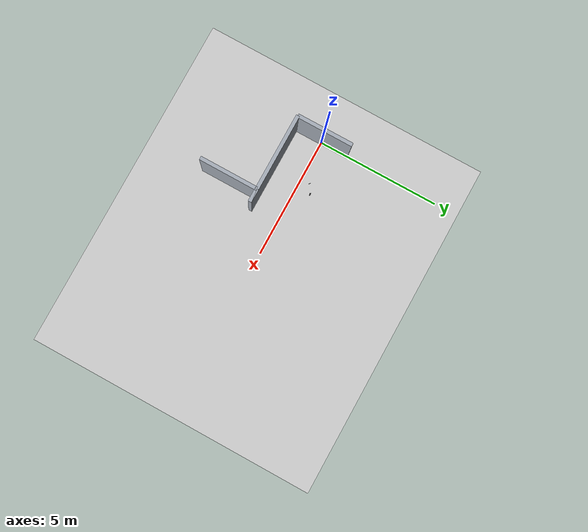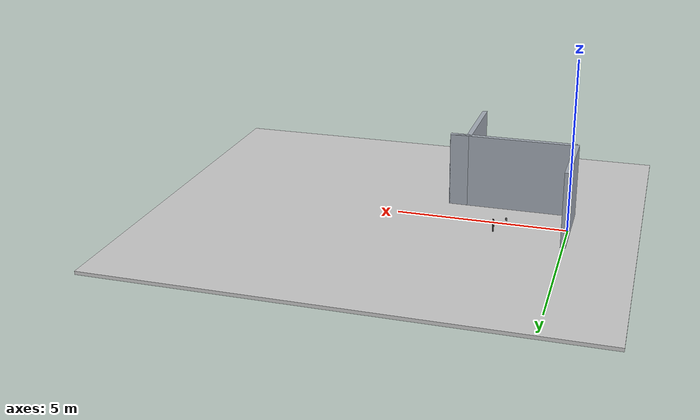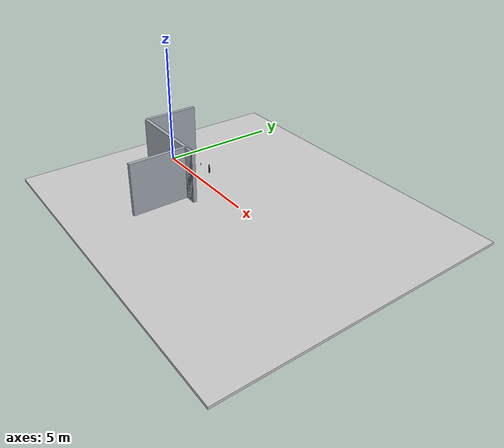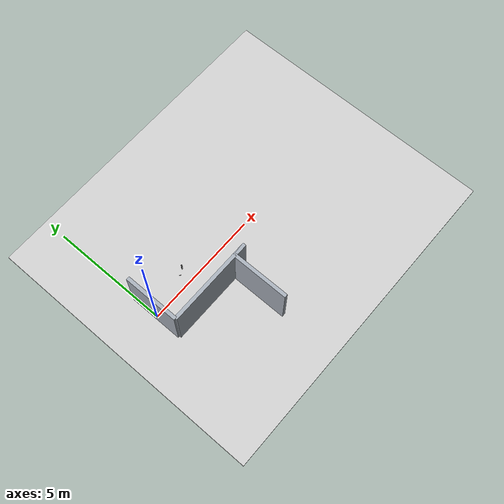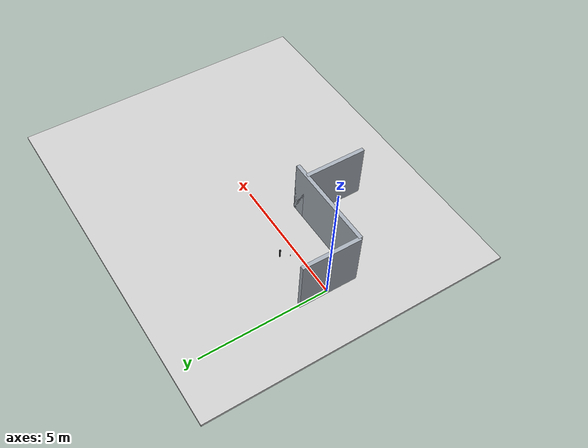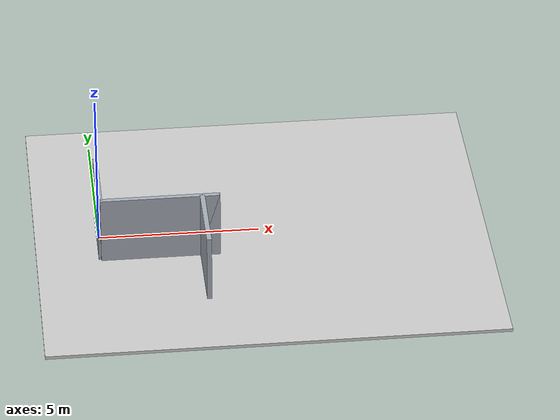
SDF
<sdf version="1.9">
 <world name="default">
  <model name="ground_plane">
   <static>true</static>
   <pose>5.05 0 -0.05 0 0 0</pose>
   <link name="body">
    <collision name="collision"><geometry><box><size>14.1 12 0.1</size></box></geometry></collision>
    <visual name="visual">
     <geometry><box><size>14.1 12 0.1</size></box></geometry>
     <material><ambient>0.8 0.8 0.8 1</ambient><diffuse>0.8 0.8 0.8 1</diffuse></material>
    </visual>
   </link>
  </model>
  <model name="start_wall">
   <static>true</static>
   <pose>0 0 1.1 0 0 0</pose>
   <link name="body">
    <collision name="collision"><geometry><box><size>0.15 2.3 2.2</size></box></geometry></collision>
    <visual name="visual">
     <geometry><box><size>0.15 2.3 2.2</size></box></geometry>
     <material><ambient>0.65 0.68 0.72 1</ambient><diffuse>0.65 0.68 0.72 1</diffuse></material>
    </visual>
   </link>
  </model>
  <model name="hall_-1_1">
   <static>true</static>
   <pose>1.85 -1.15 1.1 0 0 0</pose>
   <link name="body">
    <collision name="collision"><geometry><box><size>3.7 0.15 2.2</size></box></geometry></collision>
    <visual name="visual">
     <geometry><box><size>3.7 0.15 2.2</size></box></geometry>
     <material><ambient>0.65 0.68 0.72 1</ambient><diffuse>0.65 0.68 0.72 1</diffuse></material>
    </visual>
   </link>
  </model>
  <model name="room_-1_1_-1">
   <static>true</static>
   <pose>3.1500000000000004 -2.3499999999999996 1.1 0 0 0</pose>
   <link name="body">
    <collision name="collision"><geometry><box><size>0.15 2.4 2.2</size></box></geometry></collision>
    <visual name="visual">
     <geometry><box><size>0.15 2.4 2.2</size></box></geometry>
     <material><ambient>0.65 0.68 0.72 1</ambient><diffuse>0.65 0.68 0.72 1</diffuse></material>
    </visual>
   </link>
  </model>
  <model name="jamb_-1_1_-1">
   <static>true</static>
   <pose>3.4250000000000003 -1.15 1.1 0 0 0</pose>
   <link name="body">
    <collision name="collision"><geometry><box><size>0.55 0.15 2.2</size></box></geometry></collision>
    <visual name="visual">
     <geometry><box><size>0.55 0.15 2.2</size></box></geometry>
     <material><ambient>0.65 0.68 0.72 1</ambient><diffuse>0.65 0.68 0.72 1</diffuse></material>
    </visual>
   </link>
  </model>
  <model name="chair_leg_-0.16_-0.16">
   <static>true</static>
   <pose>2.04 0.5899999999999999 0.19 0 0 0</pose>
   <link name="body">
    <collision name="collision"><geometry><box><size>0.04 0.04 0.38</size></box></geometry></collision>
    <visual name="visual">
     <geometry><box><size>0.04 0.04 0.38</size></box></geometry>
     <material><ambient>0.2 0.2 0.2 1</ambient><diffuse>0.2 0.2 0.2 1</diffuse></material>
    </visual>
   </link>
  </model>
  <model name="expansion_occluder_dev_02-r003-green-chair">
   <static>true</static>
   <pose>1.710044098607973 0.37379723609308657 0.3300535376907057 -1.5707963267948966 -0.0 -0.7853981633974485</pose>
   <link name="visual_only">
    <visual name="neutral_occluder">
     <geometry><box><size>0.07826176185433256 0.0902929246185885 0.002</size></box></geometry>
     <material><ambient>.45 .45 .45 1</ambient><diffuse>.45 .45 .45 1</diffuse></material>
     <cast_shadows>false</cast_shadows>
    </visual>
   </link>
  </model>
 </world>
</sdf>
